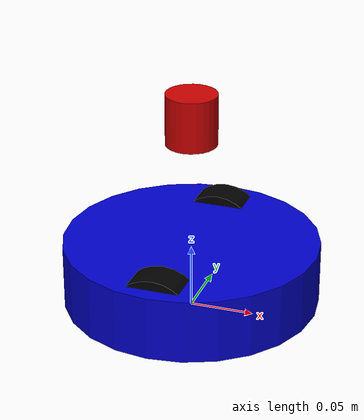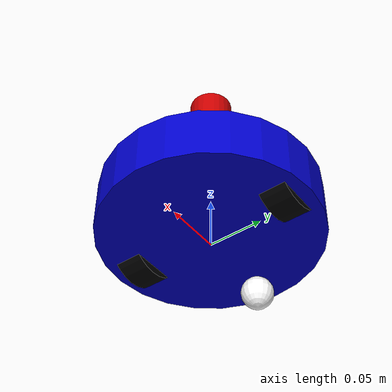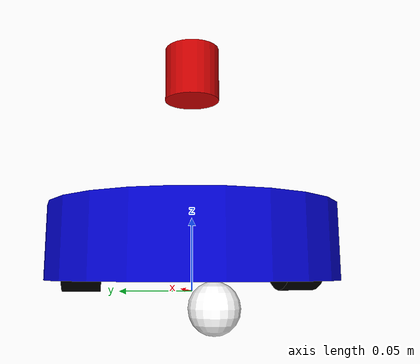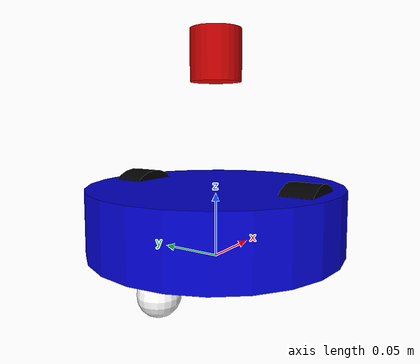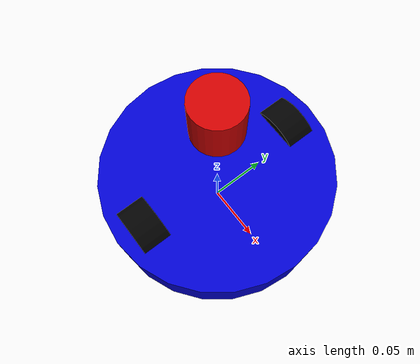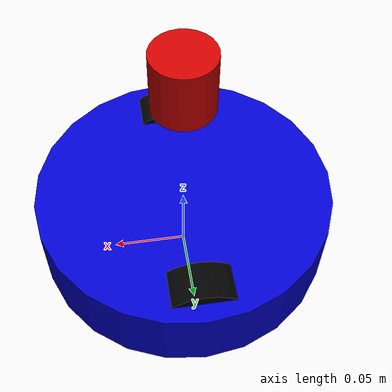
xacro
<?xml version="1.0"?>
<robot xmlns:xacro="http://www.ros.org/wiki/xacro" name="wayfinder">

  <!-- PROPERTY DEFINITIONS -->
  <!-- All measurements in meters unless otherwise specified -->

  <!-- Robot base properties -->
  <xacro:property name="base_radius" value="0.1" />  <!-- 200mm diameter = 0.1m radius -->
  <xacro:property name="base_height" value="0.05" />  <!-- 50mm height -->
  <xacro:property name="base_mass" value="2.0" />  <!-- 2kg base mass -->

  <!-- Wheel properties -->
  <xacro:property name="wheel_radius" value="0.0325" />  <!-- 65mm diameter = 0.0325m radius -->
  <xacro:property name="wheel_width" value="0.025" />  <!-- 25mm width -->
  <xacro:property name="wheel_mass" value="0.1" />  <!-- 100g per wheel -->
  <xacro:property name="wheel_separation" value="0.15" />  <!-- 150mm between wheels -->
  <xacro:property name="wheel_offset_z" value="0.0" />  <!-- Wheels at same height as base center -->

  <!-- Caster wheel properties -->
  <xacro:property name="caster_radius" value="0.015" />  <!-- 30mm diameter = 0.015m radius -->
  <xacro:property name="caster_mass" value="0.05" />  <!-- 50g caster -->
  <xacro:property name="caster_offset_x" value="-0.07" />  <!-- 70mm behind center -->

  <!-- LiDAR properties -->
  <xacro:property name="lidar_size" value="0.04" />  <!-- 40mm x 40mm x 40mm cube approximation -->
  <xacro:property name="lidar_mass" value="0.2" />  <!-- 200g LiDAR -->
  <xacro:property name="lidar_offset_z" value="0.1" />  <!-- 100mm above base -->

  <!-- Material colors for visualization -->
  <material name="blue">
    <color rgba="0 0 0.8 1"/>
  </material>

  <material name="black">
    <color rgba="0 0 0 1"/>
  </material>

  <material name="white">
    <color rgba="1 1 1 1"/>
  </material>

  <material name="red">
    <color rgba="0.8 0 0 1"/>
  </material>

  <!-- INERTIA MACROS -->
  <!-- These macros calculate inertial properties for common shapes -->

  <!-- Inertia for a solid cylinder -->
  <xacro:macro name="cylinder_inertia" params="mass radius height">
    <inertia
      ixx="${mass * (3 * radius * radius + height * height) / 12}"
      ixy="0.0"
      ixz="0.0"
      iyy="${mass * (3 * radius * radius + height * height) / 12}"
      iyz="0.0"
      izz="${mass * radius * radius / 2}"
    />
  </xacro:macro>

  <!-- Inertia for a sphere -->
  <xacro:macro name="sphere_inertia" params="mass radius">
    <inertia
      ixx="${2 * mass * radius * radius / 5}"
      ixy="0.0"
      ixz="0.0"
      iyy="${2 * mass * radius * radius / 5}"
      iyz="0.0"
      izz="${2 * mass * radius * radius / 5}"
    />
  </xacro:macro>

  <!-- Inertia for a box -->
  <xacro:macro name="box_inertia" params="mass x y z">
    <inertia
      ixx="${mass * (y*y + z*z) / 12}"
      ixy="0.0"
      ixz="0.0"
      iyy="${mass * (x*x + z*z) / 12}"
      iyz="0.0"
      izz="${mass * (x*x + y*y) / 12}"
    />
  </xacro:macro>

  <!-- WHEEL MACRO -->
  <!-- Creates a wheel link and joint -->
  <xacro:macro name="wheel" params="prefix reflect">

    <!-- Wheel link -->
    <link name="${prefix}_wheel">
      <visual>
        <origin xyz="0 0 0" rpy="${pi/2} 0 0"/>
        <geometry>
          <cylinder radius="${wheel_radius}" length="${wheel_width}"/>
        </geometry>
        <material name="black"/>
      </visual>

      <collision>
        <origin xyz="0 0 0" rpy="${pi/2} 0 0"/>
        <geometry>
          <cylinder radius="${wheel_radius}" length="${wheel_width}"/>
        </geometry>
      </collision>

      <inertial>
        <origin xyz="0 0 0" rpy="${pi/2} 0 0"/>
        <mass value="${wheel_mass}"/>
        <!-- Inertia for a cylinder rotating around its axis -->
        <xacro:cylinder_inertia mass="${wheel_mass}" radius="${wheel_radius}" height="${wheel_width}"/>
      </inertial>
    </link>

    <!-- Wheel joint (continuous rotation) -->
    <joint name="${prefix}_wheel_joint" type="continuous">
      <parent link="base_link"/>
      <child link="${prefix}_wheel"/>
      <!-- Position wheel on left or right side -->
      <origin xyz="0 ${reflect * wheel_separation / 2} ${wheel_offset_z}" rpy="0 0 0"/>
      <axis xyz="0 1 0"/>  <!-- Rotation around Y axis -->
      <limit effort="10" velocity="10"/>  <!-- 10 Nm torque, 10 rad/s max speed -->
      <dynamics damping="0.1" friction="0.1"/>
    </joint>

    <!-- Gazebo-specific wheel properties (for simulation) -->
    <gazebo reference="${prefix}_wheel">
      <mu1>1.0</mu1>  <!-- Friction coefficient -->
      <mu2>1.0</mu2>
      <kp>1000000.0</kp>  <!-- Contact stiffness -->
      <kd>100.0</kd>  <!-- Contact damping -->
      <material>Gazebo/Black</material>
    </gazebo>

  </xacro:macro>

  <!-- BASE LINK (ROBOT CHASSIS) -->
  <!-- This is the main reference frame for the robot -->
  <link name="base_link">
    <visual>
      <origin xyz="0 0 0" rpy="0 0 0"/>
      <geometry>
        <cylinder radius="${base_radius}" length="${base_height}"/>
      </geometry>
      <material name="blue"/>
    </visual>

    <collision>
      <origin xyz="0 0 0" rpy="0 0 0"/>
      <geometry>
        <cylinder radius="${base_radius}" length="${base_height}"/>
      </geometry>
    </collision>

    <inertial>
      <origin xyz="0 0 0" rpy="0 0 0"/>
      <mass value="${base_mass}"/>
      <xacro:cylinder_inertia mass="${base_mass}" radius="${base_radius}" height="${base_height}"/>
    </inertial>
  </link>

  <gazebo reference="base_link">
    <material>Gazebo/Blue</material>
  </gazebo>

  <!-- FOOTPRINT LINK -->
  <!-- A virtual link at ground level for navigation stack -->
  <link name="base_footprint"/>

  <joint name="base_footprint_joint" type="fixed">
    <parent link="base_footprint"/>
    <child link="base_link"/>
    <!-- Raise base_link so wheels touch the ground -->
    <origin xyz="0 0 ${wheel_radius}" rpy="0 0 0"/>
  </joint>

  <!-- LEFT WHEEL -->
  <xacro:wheel prefix="left" reflect="1"/>

  <!-- RIGHT WHEEL -->
  <xacro:wheel prefix="right" reflect="-1"/>

  <!-- CASTER WHEEL -->
  <!-- Passive rear caster for stability -->
  <link name="caster_wheel">
    <visual>
      <origin xyz="0 0 0" rpy="0 0 0"/>
      <geometry>
        <sphere radius="${caster_radius}"/>
      </geometry>
      <material name="white"/>
    </visual>

    <collision>
      <origin xyz="0 0 0" rpy="0 0 0"/>
      <geometry>
        <sphere radius="${caster_radius}"/>
      </geometry>
    </collision>

    <inertial>
      <origin xyz="0 0 0" rpy="0 0 0"/>
      <mass value="${caster_mass}"/>
      <xacro:sphere_inertia mass="${caster_mass}" radius="${caster_radius}"/>
    </inertial>
  </link>

  <!-- Caster joint (fixed to base, rolls freely due to low friction) -->
  <joint name="caster_wheel_joint" type="fixed">
    <parent link="base_link"/>
    <child link="caster_wheel"/>
    <!-- Position behind and below the base -->
    <origin xyz="${caster_offset_x} 0 ${-base_height/2 - caster_radius}" rpy="0 0 0"/>
  </joint>

  <gazebo reference="caster_wheel">
    <mu1>0.0</mu1>  <!-- Zero friction - free rolling -->
    <mu2>0.0</mu2>
    <kp>1000000.0</kp>
    <kd>100.0</kd>
    <material>Gazebo/White</material>
  </gazebo>

  <!-- LIDAR LINK -->
  <!-- RP LIDAR C1M1 sensor -->
  <link name="laser">
    <visual>
      <origin xyz="0 0 0" rpy="0 0 0"/>
      <geometry>
        <cylinder radius="${lidar_size/2}" length="${lidar_size}"/>
      </geometry>
      <material name="red"/>
    </visual>

    <collision>
      <origin xyz="0 0 0" rpy="0 0 0"/>
      <geometry>
        <cylinder radius="${lidar_size/2}" length="${lidar_size}"/>
      </geometry>
    </collision>

    <inertial>
      <origin xyz="0 0 0" rpy="0 0 0"/>
      <mass value="${lidar_mass}"/>
      <xacro:cylinder_inertia mass="${lidar_mass}" radius="${lidar_size/2}" height="${lidar_size}"/>
    </inertial>
  </link>

  <!-- LiDAR joint (fixed to base) -->
  <joint name="laser_joint" type="fixed">
    <parent link="base_link"/>
    <child link="laser"/>
    <!-- Position at center of robot, elevated above base -->
    <origin xyz="0 0 ${base_height/2 + lidar_offset_z}" rpy="0 0 0"/>
  </joint>

  <gazebo reference="laser">
    <material>Gazebo/Red</material>
    <sensor type="ray" name="rplidar_sensor">
      <pose>0 0 0 0 0 0</pose>
      <visualize>true</visualize>
      <update_rate>10</update_rate>  <!-- 10 Hz scan rate -->
      <ray>
        <scan>
          <horizontal>
            <samples>360</samples>  <!-- 360 degree scan -->
            <resolution>1</resolution>
            <min_angle>0.0</min_angle>
            <max_angle>6.28319</max_angle>  <!-- 2*pi radians -->
          </horizontal>
        </scan>
        <range>
          <min>0.15</min>  <!-- 15cm minimum range -->
          <max>12.0</max>  <!-- 12m maximum range -->
          <resolution>0.01</resolution>
        </range>
        <noise>
          <type>gaussian</type>
          <mean>0.0</mean>
          <stddev>0.01</stddev>  <!-- 1cm standard deviation -->
        </noise>
      </ray>
      <plugin name="gazebo_ros_head_hokuyo_controller" filename="libgazebo_ros_ray_sensor.so">
        <topicName>/scan</topicName>
        <frameName>laser</frameName>
      </plugin>
    </sensor>
  </gazebo>

  <!-- DIFFERENTIAL DRIVE CONTROLLER PLUGIN (for Gazebo simulation) -->
  <gazebo>
    <plugin name="differential_drive_controller" filename="libgazebo_ros_diff_drive.so">

      <!-- Update rate in Hz -->
      <updateRate>50</updateRate>

      <!-- Wheel joints -->
      <leftJoint>left_wheel_joint</leftJoint>
      <rightJoint>right_wheel_joint</rightJoint>

      <!-- Kinematics -->
      <wheelSeparation>${wheel_separation}</wheelSeparation>
      <wheelDiameter>${2 * wheel_radius}</wheelDiameter>

      <!-- Limits -->
      <wheelAcceleration>1.0</wheelAcceleration>
      <wheelTorque>10</wheelTorque>

      <!-- Input/Output -->
      <commandTopic>/cmd_vel</commandTopic>
      <odometryTopic>/odom</odometryTopic>
      <odometryFrame>odom</odometryFrame>
      <robotBaseFrame>base_footprint</robotBaseFrame>

      <!-- Odometry source -->
      <odometrySource>world</odometrySource>  <!-- Use 'encoder' for realistic odometry -->

      <!-- Publishing -->
      <publishWheelTF>true</publishWheelTF>
      <publishOdomTF>true</publishOdomTF>
      <publishWheelJointState>true</publishWheelJointState>
      <publishTf>true</publishTf>

      <!-- Covariance -->
      <rosDebugLevel>na</rosDebugLevel>

    </plugin>
  </gazebo>

  <!-- JOINT STATE PUBLISHER PLUGIN (for Gazebo simulation) -->
  <gazebo>
    <plugin name="joint_state_publisher" filename="libgazebo_ros_joint_state_publisher.so">
      <jointName>left_wheel_joint, right_wheel_joint</jointName>
      <updateRate>50</updateRate>
    </plugin>
  </gazebo>

</robot>
